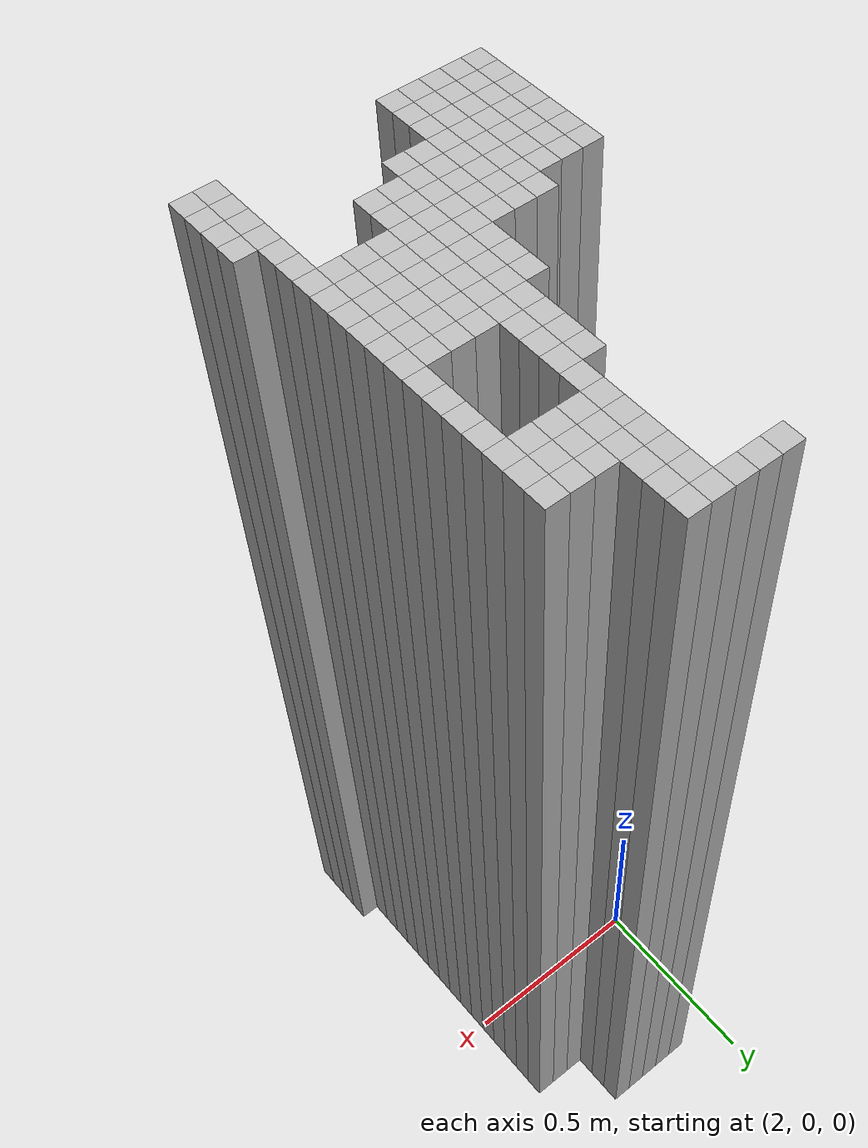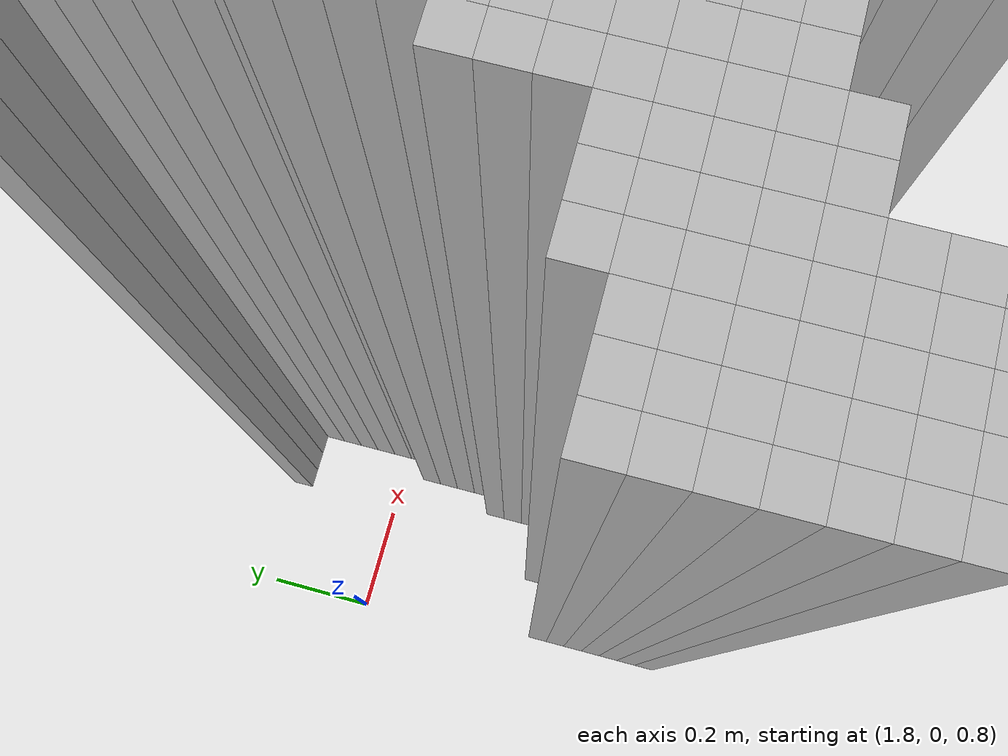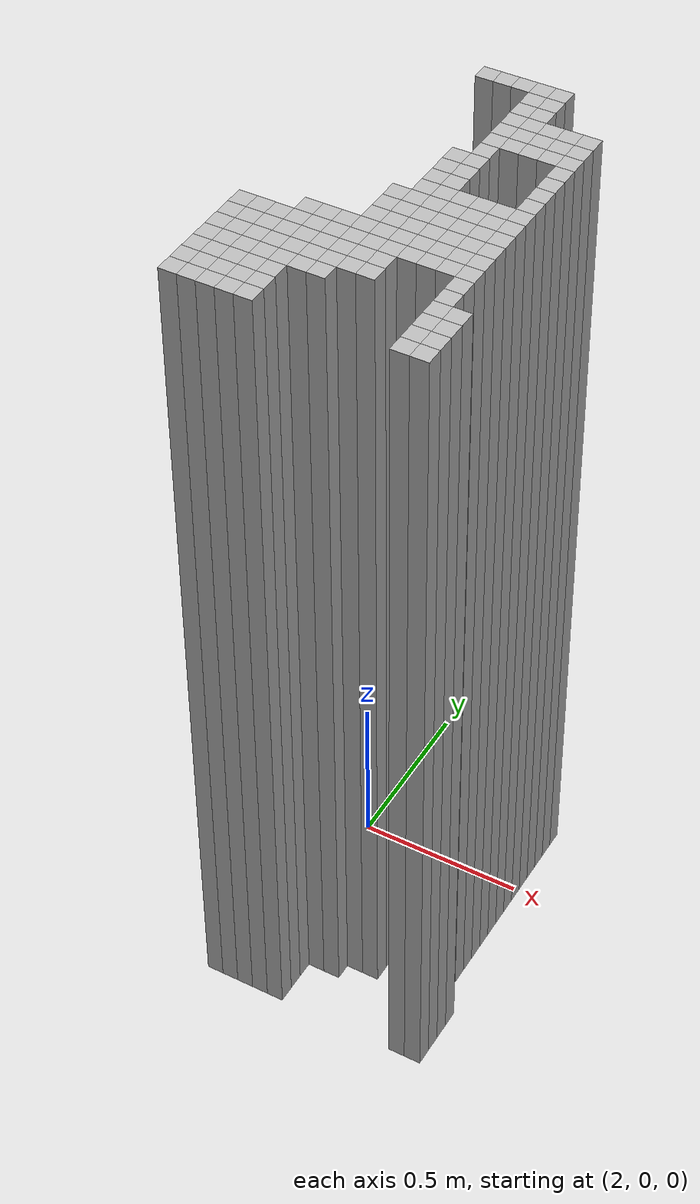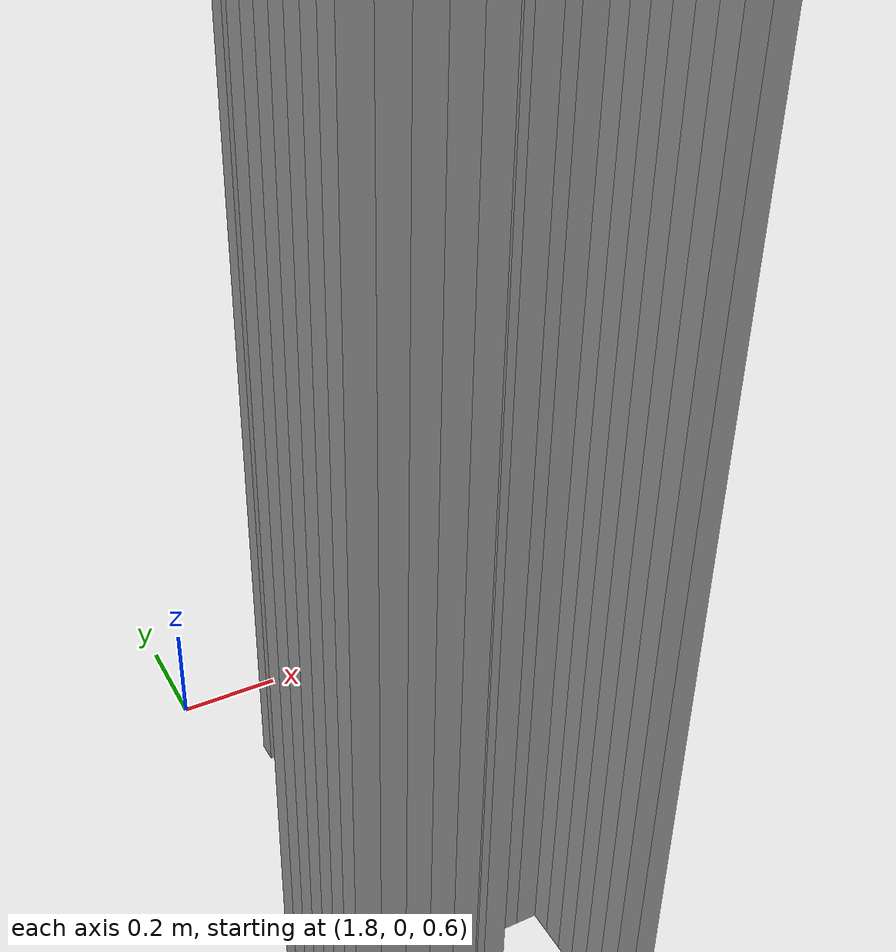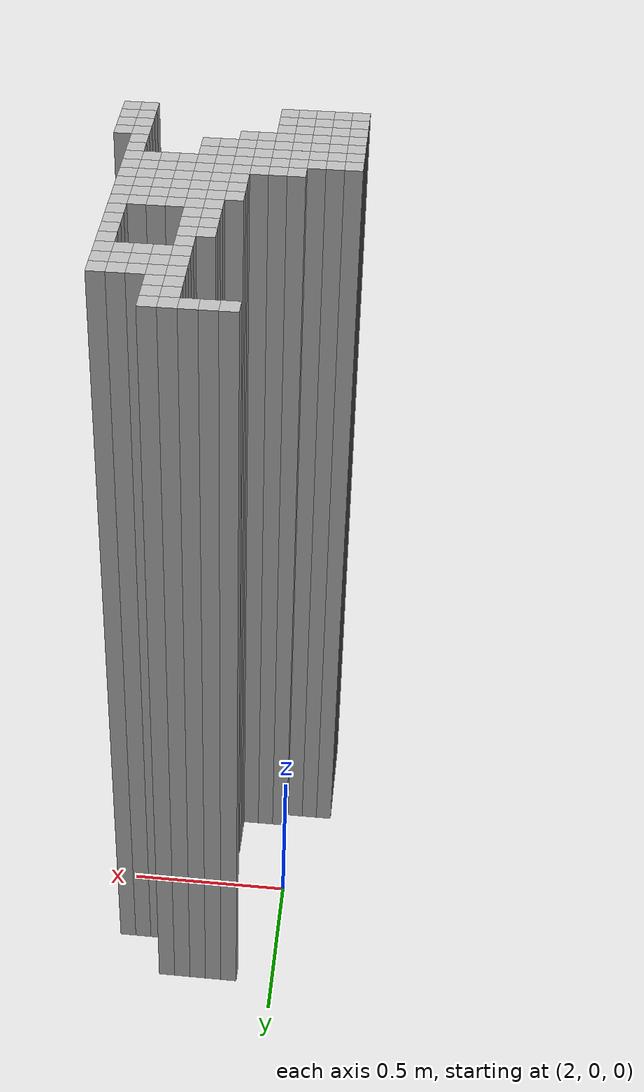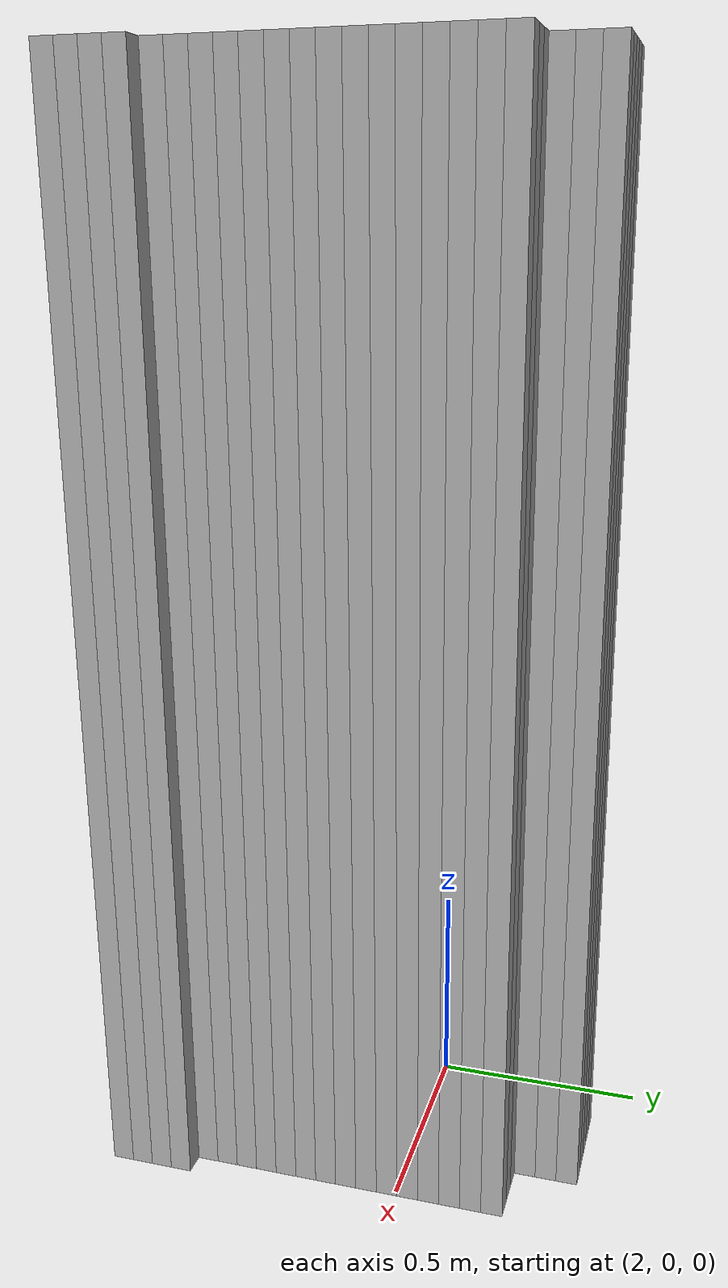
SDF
<sdf version="1.9">
 <world name="map_world">
  <model name="wall_266_146">
   <static>true</static>
   <pose>2.139 0.380 1.250 0 0 0</pose>
   <link name="link">
    <collision name="collision"><geometry><box><size>0.050 0.050 2.500</size></box></geometry></collision>
    <visual name="visual"><geometry><box><size>0.050 0.050 2.500</size></box></geometry></visual>
   </link>
  </model>
  <model name="wall_267_146">
   <static>true</static>
   <pose>2.189 0.380 1.250 0 0 0</pose>
   <link name="link">
    <collision name="collision"><geometry><box><size>0.050 0.050 2.500</size></box></geometry></collision>
    <visual name="visual"><geometry><box><size>0.050 0.050 2.500</size></box></geometry></visual>
   </link>
  </model>
  <model name="wall_268_146">
   <static>true</static>
   <pose>2.239 0.380 1.250 0 0 0</pose>
   <link name="link">
    <collision name="collision"><geometry><box><size>0.050 0.050 2.500</size></box></geometry></collision>
    <visual name="visual"><geometry><box><size>0.050 0.050 2.500</size></box></geometry></visual>
   </link>
  </model>
  <model name="wall_269_146">
   <static>true</static>
   <pose>2.289 0.380 1.250 0 0 0</pose>
   <link name="link">
    <collision name="collision"><geometry><box><size>0.050 0.050 2.500</size></box></geometry></collision>
    <visual name="visual"><geometry><box><size>0.050 0.050 2.500</size></box></geometry></visual>
   </link>
  </model>
  <model name="wall_270_146">
   <static>true</static>
   <pose>2.339 0.380 1.250 0 0 0</pose>
   <link name="link">
    <collision name="collision"><geometry><box><size>0.050 0.050 2.500</size></box></geometry></collision>
    <visual name="visual"><geometry><box><size>0.050 0.050 2.500</size></box></geometry></visual>
   </link>
  </model>
  <model name="wall_269_147">
   <static>true</static>
   <pose>2.289 0.330 1.250 0 0 0</pose>
   <link name="link">
    <collision name="collision"><geometry><box><size>0.050 0.050 2.500</size></box></geometry></collision>
    <visual name="visual"><geometry><box><size>0.050 0.050 2.500</size></box></geometry></visual>
   </link>
  </model>
  <model name="wall_270_147">
   <static>true</static>
   <pose>2.339 0.330 1.250 0 0 0</pose>
   <link name="link">
    <collision name="collision"><geometry><box><size>0.050 0.050 2.500</size></box></geometry></collision>
    <visual name="visual"><geometry><box><size>0.050 0.050 2.500</size></box></geometry></visual>
   </link>
  </model>
  <model name="wall_269_148">
   <static>true</static>
   <pose>2.289 0.280 1.250 0 0 0</pose>
   <link name="link">
    <collision name="collision"><geometry><box><size>0.050 0.050 2.500</size></box></geometry></collision>
    <visual name="visual"><geometry><box><size>0.050 0.050 2.500</size></box></geometry></visual>
   </link>
  </model>
  <model name="wall_270_148">
   <static>true</static>
   <pose>2.339 0.280 1.250 0 0 0</pose>
   <link name="link">
    <collision name="collision"><geometry><box><size>0.050 0.050 2.500</size></box></geometry></collision>
    <visual name="visual"><geometry><box><size>0.050 0.050 2.500</size></box></geometry></visual>
   </link>
  </model>
  <model name="wall_269_149">
   <static>true</static>
   <pose>2.289 0.230 1.250 0 0 0</pose>
   <link name="link">
    <collision name="collision"><geometry><box><size>0.050 0.050 2.500</size></box></geometry></collision>
    <visual name="visual"><geometry><box><size>0.050 0.050 2.500</size></box></geometry></visual>
   </link>
  </model>
  <model name="wall_270_149">
   <static>true</static>
   <pose>2.339 0.230 1.250 0 0 0</pose>
   <link name="link">
    <collision name="collision"><geometry><box><size>0.050 0.050 2.500</size></box></geometry></collision>
    <visual name="visual"><geometry><box><size>0.050 0.050 2.500</size></box></geometry></visual>
   </link>
  </model>
  <model name="wall_271_149">
   <static>true</static>
   <pose>2.389 0.230 1.250 0 0 0</pose>
   <link name="link">
    <collision name="collision"><geometry><box><size>0.050 0.050 2.500</size></box></geometry></collision>
    <visual name="visual"><geometry><box><size>0.050 0.050 2.500</size></box></geometry></visual>
   </link>
  </model>
  <model name="wall_272_149">
   <static>true</static>
   <pose>2.439 0.230 1.250 0 0 0</pose>
   <link name="link">
    <collision name="collision"><geometry><box><size>0.050 0.050 2.500</size></box></geometry></collision>
    <visual name="visual"><geometry><box><size>0.050 0.050 2.500</size></box></geometry></visual>
   </link>
  </model>
  <model name="wall_273_149">
   <static>true</static>
   <pose>2.489 0.230 1.250 0 0 0</pose>
   <link name="link">
    <collision name="collision"><geometry><box><size>0.050 0.050 2.500</size></box></geometry></collision>
    <visual name="visual"><geometry><box><size>0.050 0.050 2.500</size></box></geometry></visual>
   </link>
  </model>
  <model name="wall_269_150">
   <static>true</static>
   <pose>2.289 0.180 1.250 0 0 0</pose>
   <link name="link">
    <collision name="collision"><geometry><box><size>0.050 0.050 2.500</size></box></geometry></collision>
    <visual name="visual"><geometry><box><size>0.050 0.050 2.500</size></box></geometry></visual>
   </link>
  </model>
  <model name="wall_270_150">
   <static>true</static>
   <pose>2.339 0.180 1.250 0 0 0</pose>
   <link name="link">
    <collision name="collision"><geometry><box><size>0.050 0.050 2.500</size></box></geometry></collision>
    <visual name="visual"><geometry><box><size>0.050 0.050 2.500</size></box></geometry></visual>
   </link>
  </model>
  <model name="wall_271_150">
   <static>true</static>
   <pose>2.389 0.180 1.250 0 0 0</pose>
   <link name="link">
    <collision name="collision"><geometry><box><size>0.050 0.050 2.500</size></box></geometry></collision>
    <visual name="visual"><geometry><box><size>0.050 0.050 2.500</size></box></geometry></visual>
   </link>
  </model>
  <model name="wall_272_150">
   <static>true</static>
   <pose>2.439 0.180 1.250 0 0 0</pose>
   <link name="link">
    <collision name="collision"><geometry><box><size>0.050 0.050 2.500</size></box></geometry></collision>
    <visual name="visual"><geometry><box><size>0.050 0.050 2.500</size></box></geometry></visual>
   </link>
  </model>
  <model name="wall_273_150">
   <static>true</static>
   <pose>2.489 0.180 1.250 0 0 0</pose>
   <link name="link">
    <collision name="collision"><geometry><box><size>0.050 0.050 2.500</size></box></geometry></collision>
    <visual name="visual"><geometry><box><size>0.050 0.050 2.500</size></box></geometry></visual>
   </link>
  </model>
  <model name="wall_269_151">
   <static>true</static>
   <pose>2.289 0.130 1.250 0 0 0</pose>
   <link name="link">
    <collision name="collision"><geometry><box><size>0.050 0.050 2.500</size></box></geometry></collision>
    <visual name="visual"><geometry><box><size>0.050 0.050 2.500</size></box></geometry></visual>
   </link>
  </model>
  <model name="wall_270_151">
   <static>true</static>
   <pose>2.339 0.130 1.250 0 0 0</pose>
   <link name="link">
    <collision name="collision"><geometry><box><size>0.050 0.050 2.500</size></box></geometry></collision>
    <visual name="visual"><geometry><box><size>0.050 0.050 2.500</size></box></geometry></visual>
   </link>
  </model>
  <model name="wall_271_151">
   <static>true</static>
   <pose>2.389 0.130 1.250 0 0 0</pose>
   <link name="link">
    <collision name="collision"><geometry><box><size>0.050 0.050 2.500</size></box></geometry></collision>
    <visual name="visual"><geometry><box><size>0.050 0.050 2.500</size></box></geometry></visual>
   </link>
  </model>
  <model name="wall_272_151">
   <static>true</static>
   <pose>2.439 0.130 1.250 0 0 0</pose>
   <link name="link">
    <collision name="collision"><geometry><box><size>0.050 0.050 2.500</size></box></geometry></collision>
    <visual name="visual"><geometry><box><size>0.050 0.050 2.500</size></box></geometry></visual>
   </link>
  </model>
  <model name="wall_273_151">
   <static>true</static>
   <pose>2.489 0.130 1.250 0 0 0</pose>
   <link name="link">
    <collision name="collision"><geometry><box><size>0.050 0.050 2.500</size></box></geometry></collision>
    <visual name="visual"><geometry><box><size>0.050 0.050 2.500</size></box></geometry></visual>
   </link>
  </model>
  <model name="wall_269_152">
   <static>true</static>
   <pose>2.289 0.080 1.250 0 0 0</pose>
   <link name="link">
    <collision name="collision"><geometry><box><size>0.050 0.050 2.500</size></box></geometry></collision>
    <visual name="visual"><geometry><box><size>0.050 0.050 2.500</size></box></geometry></visual>
   </link>
  </model>
  <model name="wall_273_152">
   <static>true</static>
   <pose>2.489 0.080 1.250 0 0 0</pose>
   <link name="link">
    <collision name="collision"><geometry><box><size>0.050 0.050 2.500</size></box></geometry></collision>
    <visual name="visual"><geometry><box><size>0.050 0.050 2.500</size></box></geometry></visual>
   </link>
  </model>
  <model name="wall_268_153">
   <static>true</static>
   <pose>2.239 0.030 1.250 0 0 0</pose>
   <link name="link">
    <collision name="collision"><geometry><box><size>0.050 0.050 2.500</size></box></geometry></collision>
    <visual name="visual"><geometry><box><size>0.050 0.050 2.500</size></box></geometry></visual>
   </link>
  </model>
  <model name="wall_269_153">
   <static>true</static>
   <pose>2.289 0.030 1.250 0 0 0</pose>
   <link name="link">
    <collision name="collision"><geometry><box><size>0.050 0.050 2.500</size></box></geometry></collision>
    <visual name="visual"><geometry><box><size>0.050 0.050 2.500</size></box></geometry></visual>
   </link>
  </model>
  <model name="wall_273_153">
   <static>true</static>
   <pose>2.489 0.030 1.250 0 0 0</pose>
   <link name="link">
    <collision name="collision"><geometry><box><size>0.050 0.050 2.500</size></box></geometry></collision>
    <visual name="visual"><geometry><box><size>0.050 0.050 2.500</size></box></geometry></visual>
   </link>
  </model>
  <model name="wall_268_154">
   <static>true</static>
   <pose>2.239 -0.020 1.250 0 0 0</pose>
   <link name="link">
    <collision name="collision"><geometry><box><size>0.050 0.050 2.500</size></box></geometry></collision>
    <visual name="visual"><geometry><box><size>0.050 0.050 2.500</size></box></geometry></visual>
   </link>
  </model>
  <model name="wall_269_154">
   <static>true</static>
   <pose>2.289 -0.020 1.250 0 0 0</pose>
   <link name="link">
    <collision name="collision"><geometry><box><size>0.050 0.050 2.500</size></box></geometry></collision>
    <visual name="visual"><geometry><box><size>0.050 0.050 2.500</size></box></geometry></visual>
   </link>
  </model>
  <model name="wall_273_154">
   <static>true</static>
   <pose>2.489 -0.020 1.250 0 0 0</pose>
   <link name="link">
    <collision name="collision"><geometry><box><size>0.050 0.050 2.500</size></box></geometry></collision>
    <visual name="visual"><geometry><box><size>0.050 0.050 2.500</size></box></geometry></visual>
   </link>
  </model>
  <model name="wall_268_155">
   <static>true</static>
   <pose>2.239 -0.070 1.250 0 0 0</pose>
   <link name="link">
    <collision name="collision"><geometry><box><size>0.050 0.050 2.500</size></box></geometry></collision>
    <visual name="visual"><geometry><box><size>0.050 0.050 2.500</size></box></geometry></visual>
   </link>
  </model>
  <model name="wall_269_155">
   <static>true</static>
   <pose>2.289 -0.070 1.250 0 0 0</pose>
   <link name="link">
    <collision name="collision"><geometry><box><size>0.050 0.050 2.500</size></box></geometry></collision>
    <visual name="visual"><geometry><box><size>0.050 0.050 2.500</size></box></geometry></visual>
   </link>
  </model>
  <model name="wall_273_155">
   <static>true</static>
   <pose>2.489 -0.070 1.250 0 0 0</pose>
   <link name="link">
    <collision name="collision"><geometry><box><size>0.050 0.050 2.500</size></box></geometry></collision>
    <visual name="visual"><geometry><box><size>0.050 0.050 2.500</size></box></geometry></visual>
   </link>
  </model>
  <model name="wall_268_156">
   <static>true</static>
   <pose>2.239 -0.120 1.250 0 0 0</pose>
   <link name="link">
    <collision name="collision"><geometry><box><size>0.050 0.050 2.500</size></box></geometry></collision>
    <visual name="visual"><geometry><box><size>0.050 0.050 2.500</size></box></geometry></visual>
   </link>
  </model>
  <model name="wall_269_156">
   <static>true</static>
   <pose>2.289 -0.120 1.250 0 0 0</pose>
   <link name="link">
    <collision name="collision"><geometry><box><size>0.050 0.050 2.500</size></box></geometry></collision>
    <visual name="visual"><geometry><box><size>0.050 0.050 2.500</size></box></geometry></visual>
   </link>
  </model>
  <model name="wall_270_156">
   <static>true</static>
   <pose>2.339 -0.120 1.250 0 0 0</pose>
   <link name="link">
    <collision name="collision"><geometry><box><size>0.050 0.050 2.500</size></box></geometry></collision>
    <visual name="visual"><geometry><box><size>0.050 0.050 2.500</size></box></geometry></visual>
   </link>
  </model>
  <model name="wall_271_156">
   <static>true</static>
   <pose>2.389 -0.120 1.250 0 0 0</pose>
   <link name="link">
    <collision name="collision"><geometry><box><size>0.050 0.050 2.500</size></box></geometry></collision>
    <visual name="visual"><geometry><box><size>0.050 0.050 2.500</size></box></geometry></visual>
   </link>
  </model>
  <model name="wall_272_156">
   <static>true</static>
   <pose>2.439 -0.120 1.250 0 0 0</pose>
   <link name="link">
    <collision name="collision"><geometry><box><size>0.050 0.050 2.500</size></box></geometry></collision>
    <visual name="visual"><geometry><box><size>0.050 0.050 2.500</size></box></geometry></visual>
   </link>
  </model>
  <model name="wall_273_156">
   <static>true</static>
   <pose>2.489 -0.120 1.250 0 0 0</pose>
   <link name="link">
    <collision name="collision"><geometry><box><size>0.050 0.050 2.500</size></box></geometry></collision>
    <visual name="visual"><geometry><box><size>0.050 0.050 2.500</size></box></geometry></visual>
   </link>
  </model>
  <model name="wall_267_157">
   <static>true</static>
   <pose>2.189 -0.170 1.250 0 0 0</pose>
   <link name="link">
    <collision name="collision"><geometry><box><size>0.050 0.050 2.500</size></box></geometry></collision>
    <visual name="visual"><geometry><box><size>0.050 0.050 2.500</size></box></geometry></visual>
   </link>
  </model>
  <model name="wall_268_157">
   <static>true</static>
   <pose>2.239 -0.170 1.250 0 0 0</pose>
   <link name="link">
    <collision name="collision"><geometry><box><size>0.050 0.050 2.500</size></box></geometry></collision>
    <visual name="visual"><geometry><box><size>0.050 0.050 2.500</size></box></geometry></visual>
   </link>
  </model>
  <model name="wall_269_157">
   <static>true</static>
   <pose>2.289 -0.170 1.250 0 0 0</pose>
   <link name="link">
    <collision name="collision"><geometry><box><size>0.050 0.050 2.500</size></box></geometry></collision>
    <visual name="visual"><geometry><box><size>0.050 0.050 2.500</size></box></geometry></visual>
   </link>
  </model>
  <model name="wall_270_157">
   <static>true</static>
   <pose>2.339 -0.170 1.250 0 0 0</pose>
   <link name="link">
    <collision name="collision"><geometry><box><size>0.050 0.050 2.500</size></box></geometry></collision>
    <visual name="visual"><geometry><box><size>0.050 0.050 2.500</size></box></geometry></visual>
   </link>
  </model>
  <model name="wall_271_157">
   <static>true</static>
   <pose>2.389 -0.170 1.250 0 0 0</pose>
   <link name="link">
    <collision name="collision"><geometry><box><size>0.050 0.050 2.500</size></box></geometry></collision>
    <visual name="visual"><geometry><box><size>0.050 0.050 2.500</size></box></geometry></visual>
   </link>
  </model>
  <model name="wall_272_157">
   <static>true</static>
   <pose>2.439 -0.170 1.250 0 0 0</pose>
   <link name="link">
    <collision name="collision"><geometry><box><size>0.050 0.050 2.500</size></box></geometry></collision>
    <visual name="visual"><geometry><box><size>0.050 0.050 2.500</size></box></geometry></visual>
   </link>
  </model>
  <model name="wall_273_157">
   <static>true</static>
   <pose>2.489 -0.170 1.250 0 0 0</pose>
   <link name="link">
    <collision name="collision"><geometry><box><size>0.050 0.050 2.500</size></box></geometry></collision>
    <visual name="visual"><geometry><box><size>0.050 0.050 2.500</size></box></geometry></visual>
   </link>
  </model>
  <model name="wall_267_158">
   <static>true</static>
   <pose>2.189 -0.220 1.250 0 0 0</pose>
   <link name="link">
    <collision name="collision"><geometry><box><size>0.050 0.050 2.500</size></box></geometry></collision>
    <visual name="visual"><geometry><box><size>0.050 0.050 2.500</size></box></geometry></visual>
   </link>
  </model>
  <model name="wall_268_158">
   <static>true</static>
   <pose>2.239 -0.220 1.250 0 0 0</pose>
   <link name="link">
    <collision name="collision"><geometry><box><size>0.050 0.050 2.500</size></box></geometry></collision>
    <visual name="visual"><geometry><box><size>0.050 0.050 2.500</size></box></geometry></visual>
   </link>
  </model>
  <model name="wall_269_158">
   <static>true</static>
   <pose>2.289 -0.220 1.250 0 0 0</pose>
   <link name="link">
    <collision name="collision"><geometry><box><size>0.050 0.050 2.500</size></box></geometry></collision>
    <visual name="visual"><geometry><box><size>0.050 0.050 2.500</size></box></geometry></visual>
   </link>
  </model>
  <model name="wall_270_158">
   <static>true</static>
   <pose>2.339 -0.220 1.250 0 0 0</pose>
   <link name="link">
    <collision name="collision"><geometry><box><size>0.050 0.050 2.500</size></box></geometry></collision>
    <visual name="visual"><geometry><box><size>0.050 0.050 2.500</size></box></geometry></visual>
   </link>
  </model>
  <model name="wall_271_158">
   <static>true</static>
   <pose>2.389 -0.220 1.250 0 0 0</pose>
   <link name="link">
    <collision name="collision"><geometry><box><size>0.050 0.050 2.500</size></box></geometry></collision>
    <visual name="visual"><geometry><box><size>0.050 0.050 2.500</size></box></geometry></visual>
   </link>
  </model>
  <model name="wall_272_158">
   <static>true</static>
   <pose>2.439 -0.220 1.250 0 0 0</pose>
   <link name="link">
    <collision name="collision"><geometry><box><size>0.050 0.050 2.500</size></box></geometry></collision>
    <visual name="visual"><geometry><box><size>0.050 0.050 2.500</size></box></geometry></visual>
   </link>
  </model>
  <model name="wall_273_158">
   <static>true</static>
   <pose>2.489 -0.220 1.250 0 0 0</pose>
   <link name="link">
    <collision name="collision"><geometry><box><size>0.050 0.050 2.500</size></box></geometry></collision>
    <visual name="visual"><geometry><box><size>0.050 0.050 2.500</size></box></geometry></visual>
   </link>
  </model>
  <model name="wall_267_159">
   <static>true</static>
   <pose>2.189 -0.270 1.250 0 0 0</pose>
   <link name="link">
    <collision name="collision"><geometry><box><size>0.050 0.050 2.500</size></box></geometry></collision>
    <visual name="visual"><geometry><box><size>0.050 0.050 2.500</size></box></geometry></visual>
   </link>
  </model>
  <model name="wall_268_159">
   <static>true</static>
   <pose>2.239 -0.270 1.250 0 0 0</pose>
   <link name="link">
    <collision name="collision"><geometry><box><size>0.050 0.050 2.500</size></box></geometry></collision>
    <visual name="visual"><geometry><box><size>0.050 0.050 2.500</size></box></geometry></visual>
   </link>
  </model>
  <model name="wall_269_159">
   <static>true</static>
   <pose>2.289 -0.270 1.250 0 0 0</pose>
   <link name="link">
    <collision name="collision"><geometry><box><size>0.050 0.050 2.500</size></box></geometry></collision>
    <visual name="visual"><geometry><box><size>0.050 0.050 2.500</size></box></geometry></visual>
   </link>
  </model>
  <model name="wall_270_159">
   <static>true</static>
   <pose>2.339 -0.270 1.250 0 0 0</pose>
   <link name="link">
    <collision name="collision"><geometry><box><size>0.050 0.050 2.500</size></box></geometry></collision>
    <visual name="visual"><geometry><box><size>0.050 0.050 2.500</size></box></geometry></visual>
   </link>
  </model>
  <model name="wall_271_159">
   <static>true</static>
   <pose>2.389 -0.270 1.250 0 0 0</pose>
   <link name="link">
    <collision name="collision"><geometry><box><size>0.050 0.050 2.500</size></box></geometry></collision>
    <visual name="visual"><geometry><box><size>0.050 0.050 2.500</size></box></geometry></visual>
   </link>
  </model>
  <model name="wall_272_159">
   <static>true</static>
   <pose>2.439 -0.270 1.250 0 0 0</pose>
   <link name="link">
    <collision name="collision"><geometry><box><size>0.050 0.050 2.500</size></box></geometry></collision>
    <visual name="visual"><geometry><box><size>0.050 0.050 2.500</size></box></geometry></visual>
   </link>
  </model>
  <model name="wall_273_159">
   <static>true</static>
   <pose>2.489 -0.270 1.250 0 0 0</pose>
   <link name="link">
    <collision name="collision"><geometry><box><size>0.050 0.050 2.500</size></box></geometry></collision>
    <visual name="visual"><geometry><box><size>0.050 0.050 2.500</size></box></geometry></visual>
   </link>
  </model>
  <model name="wall_264_160">
   <static>true</static>
   <pose>2.039 -0.320 1.250 0 0 0</pose>
   <link name="link">
    <collision name="collision"><geometry><box><size>0.050 0.050 2.500</size></box></geometry></collision>
    <visual name="visual"><geometry><box><size>0.050 0.050 2.500</size></box></geometry></visual>
   </link>
  </model>
  <model name="wall_265_160">
   <static>true</static>
   <pose>2.089 -0.320 1.250 0 0 0</pose>
   <link name="link">
    <collision name="collision"><geometry><box><size>0.050 0.050 2.500</size></box></geometry></collision>
    <visual name="visual"><geometry><box><size>0.050 0.050 2.500</size></box></geometry></visual>
   </link>
  </model>
  <model name="wall_266_160">
   <static>true</static>
   <pose>2.139 -0.320 1.250 0 0 0</pose>
   <link name="link">
    <collision name="collision"><geometry><box><size>0.050 0.050 2.500</size></box></geometry></collision>
    <visual name="visual"><geometry><box><size>0.050 0.050 2.500</size></box></geometry></visual>
   </link>
  </model>
  <model name="wall_267_160">
   <static>true</static>
   <pose>2.189 -0.320 1.250 0 0 0</pose>
   <link name="link">
    <collision name="collision"><geometry><box><size>0.050 0.050 2.500</size></box></geometry></collision>
    <visual name="visual"><geometry><box><size>0.050 0.050 2.500</size></box></geometry></visual>
   </link>
  </model>
  <model name="wall_268_160">
   <static>true</static>
   <pose>2.239 -0.320 1.250 0 0 0</pose>
   <link name="link">
    <collision name="collision"><geometry><box><size>0.050 0.050 2.500</size></box></geometry></collision>
    <visual name="visual"><geometry><box><size>0.050 0.050 2.500</size></box></geometry></visual>
   </link>
  </model>
  <model name="wall_269_160">
   <static>true</static>
   <pose>2.289 -0.320 1.250 0 0 0</pose>
   <link name="link">
    <collision name="collision"><geometry><box><size>0.050 0.050 2.500</size></box></geometry></collision>
    <visual name="visual"><geometry><box><size>0.050 0.050 2.500</size></box></geometry></visual>
   </link>
  </model>
  <model name="wall_270_160">
   <static>true</static>
   <pose>2.339 -0.320 1.250 0 0 0</pose>
   <link name="link">
    <collision name="collision"><geometry><box><size>0.050 0.050 2.500</size></box></geometry></collision>
    <visual name="visual"><geometry><box><size>0.050 0.050 2.500</size></box></geometry></visual>
   </link>
  </model>
  <model name="wall_271_160">
   <static>true</static>
   <pose>2.389 -0.320 1.250 0 0 0</pose>
   <link name="link">
    <collision name="collision"><geometry><box><size>0.050 0.050 2.500</size></box></geometry></collision>
    <visual name="visual"><geometry><box><size>0.050 0.050 2.500</size></box></geometry></visual>
   </link>
  </model>
  <model name="wall_272_160">
   <static>true</static>
   <pose>2.439 -0.320 1.250 0 0 0</pose>
   <link name="link">
    <collision name="collision"><geometry><box><size>0.050 0.050 2.500</size></box></geometry></collision>
    <visual name="visual"><geometry><box><size>0.050 0.050 2.500</size></box></geometry></visual>
   </link>
  </model>
  <model name="wall_273_160">
   <static>true</static>
   <pose>2.489 -0.320 1.250 0 0 0</pose>
   <link name="link">
    <collision name="collision"><geometry><box><size>0.050 0.050 2.500</size></box></geometry></collision>
    <visual name="visual"><geometry><box><size>0.050 0.050 2.500</size></box></geometry></visual>
   </link>
  </model>
  <model name="wall_261_161">
   <static>true</static>
   <pose>1.889 -0.370 1.250 0 0 0</pose>
   <link name="link">
    <collision name="collision"><geometry><box><size>0.050 0.050 2.500</size></box></geometry></collision>
    <visual name="visual"><geometry><box><size>0.050 0.050 2.500</size></box></geometry></visual>
   </link>
  </model>
  <model name="wall_262_161">
   <static>true</static>
   <pose>1.939 -0.370 1.250 0 0 0</pose>
   <link name="link">
    <collision name="collision"><geometry><box><size>0.050 0.050 2.500</size></box></geometry></collision>
    <visual name="visual"><geometry><box><size>0.050 0.050 2.500</size></box></geometry></visual>
   </link>
  </model>
  <model name="wall_263_161">
   <static>true</static>
   <pose>1.989 -0.370 1.250 0 0 0</pose>
   <link name="link">
    <collision name="collision"><geometry><box><size>0.050 0.050 2.500</size></box></geometry></collision>
    <visual name="visual"><geometry><box><size>0.050 0.050 2.500</size></box></geometry></visual>
   </link>
  </model>
  <model name="wall_264_161">
   <static>true</static>
   <pose>2.039 -0.370 1.250 0 0 0</pose>
   <link name="link">
    <collision name="collision"><geometry><box><size>0.050 0.050 2.500</size></box></geometry></collision>
    <visual name="visual"><geometry><box><size>0.050 0.050 2.500</size></box></geometry></visual>
   </link>
  </model>
  <model name="wall_265_161">
   <static>true</static>
   <pose>2.089 -0.370 1.250 0 0 0</pose>
   <link name="link">
    <collision name="collision"><geometry><box><size>0.050 0.050 2.500</size></box></geometry></collision>
    <visual name="visual"><geometry><box><size>0.050 0.050 2.500</size></box></geometry></visual>
   </link>
  </model>
  <model name="wall_266_161">
   <static>true</static>
   <pose>2.139 -0.370 1.250 0 0 0</pose>
   <link name="link">
    <collision name="collision"><geometry><box><size>0.050 0.050 2.500</size></box></geometry></collision>
    <visual name="visual"><geometry><box><size>0.050 0.050 2.500</size></box></geometry></visual>
   </link>
  </model>
  <model name="wall_267_161">
   <static>true</static>
   <pose>2.189 -0.370 1.250 0 0 0</pose>
   <link name="link">
    <collision name="collision"><geometry><box><size>0.050 0.050 2.500</size></box></geometry></collision>
    <visual name="visual"><geometry><box><size>0.050 0.050 2.500</size></box></geometry></visual>
   </link>
  </model>
  <model name="wall_268_161">
   <static>true</static>
   <pose>2.239 -0.370 1.250 0 0 0</pose>
   <link name="link">
    <collision name="collision"><geometry><box><size>0.050 0.050 2.500</size></box></geometry></collision>
    <visual name="visual"><geometry><box><size>0.050 0.050 2.500</size></box></geometry></visual>
   </link>
  </model>
  <model name="wall_269_161">
   <static>true</static>
   <pose>2.289 -0.370 1.250 0 0 0</pose>
   <link name="link">
    <collision name="collision"><geometry><box><size>0.050 0.050 2.500</size></box></geometry></collision>
    <visual name="visual"><geometry><box><size>0.050 0.050 2.500</size></box></geometry></visual>
   </link>
  </model>
  <model name="wall_270_161">
   <static>true</static>
   <pose>2.339 -0.370 1.250 0 0 0</pose>
   <link name="link">
    <collision name="collision"><geometry><box><size>0.050 0.050 2.500</size></box></geometry></collision>
    <visual name="visual"><geometry><box><size>0.050 0.050 2.500</size></box></geometry></visual>
   </link>
  </model>
  <model name="wall_271_161">
   <static>true</static>
   <pose>2.389 -0.370 1.250 0 0 0</pose>
   <link name="link">
    <collision name="collision"><geometry><box><size>0.050 0.050 2.500</size></box></geometry></collision>
    <visual name="visual"><geometry><box><size>0.050 0.050 2.500</size></box></geometry></visual>
   </link>
  </model>
  <model name="wall_272_161">
   <static>true</static>
   <pose>2.439 -0.370 1.250 0 0 0</pose>
   <link name="link">
    <collision name="collision"><geometry><box><size>0.050 0.050 2.500</size></box></geometry></collision>
    <visual name="visual"><geometry><box><size>0.050 0.050 2.500</size></box></geometry></visual>
   </link>
  </model>
  <model name="wall_273_161">
   <static>true</static>
   <pose>2.489 -0.370 1.250 0 0 0</pose>
   <link name="link">
    <collision name="collision"><geometry><box><size>0.050 0.050 2.500</size></box></geometry></collision>
    <visual name="visual"><geometry><box><size>0.050 0.050 2.500</size></box></geometry></visual>
   </link>
  </model>
  <model name="wall_261_162">
   <static>true</static>
   <pose>1.889 -0.420 1.250 0 0 0</pose>
   <link name="link">
    <collision name="collision"><geometry><box><size>0.050 0.050 2.500</size></box></geometry></collision>
    <visual name="visual"><geometry><box><size>0.050 0.050 2.500</size></box></geometry></visual>
   </link>
  </model>
  <model name="wall_262_162">
   <static>true</static>
   <pose>1.939 -0.420 1.250 0 0 0</pose>
   <link name="link">
    <collision name="collision"><geometry><box><size>0.050 0.050 2.500</size></box></geometry></collision>
    <visual name="visual"><geometry><box><size>0.050 0.050 2.500</size></box></geometry></visual>
   </link>
  </model>
  <model name="wall_263_162">
   <static>true</static>
   <pose>1.989 -0.420 1.250 0 0 0</pose>
   <link name="link">
    <collision name="collision"><geometry><box><size>0.050 0.050 2.500</size></box></geometry></collision>
    <visual name="visual"><geometry><box><size>0.050 0.050 2.500</size></box></geometry></visual>
   </link>
  </model>
  <model name="wall_264_162">
   <static>true</static>
   <pose>2.039 -0.420 1.250 0 0 0</pose>
   <link name="link">
    <collision name="collision"><geometry><box><size>0.050 0.050 2.500</size></box></geometry></collision>
    <visual name="visual"><geometry><box><size>0.050 0.050 2.500</size></box></geometry></visual>
   </link>
  </model>
  <model name="wall_265_162">
   <static>true</static>
   <pose>2.089 -0.420 1.250 0 0 0</pose>
   <link name="link">
    <collision name="collision"><geometry><box><size>0.050 0.050 2.500</size></box></geometry></collision>
    <visual name="visual"><geometry><box><size>0.050 0.050 2.500</size></box></geometry></visual>
   </link>
  </model>
  <model name="wall_266_162">
   <static>true</static>
   <pose>2.139 -0.420 1.250 0 0 0</pose>
   <link name="link">
    <collision name="collision"><geometry><box><size>0.050 0.050 2.500</size></box></geometry></collision>
    <visual name="visual"><geometry><box><size>0.050 0.050 2.500</size></box></geometry></visual>
   </link>
  </model>
  <model name="wall_267_162">
   <static>true</static>
   <pose>2.189 -0.420 1.250 0 0 0</pose>
   <link name="link">
    <collision name="collision"><geometry><box><size>0.050 0.050 2.500</size></box></geometry></collision>
    <visual name="visual"><geometry><box><size>0.050 0.050 2.500</size></box></geometry></visual>
   </link>
  </model>
  <model name="wall_268_162">
   <static>true</static>
   <pose>2.239 -0.420 1.250 0 0 0</pose>
   <link name="link">
    <collision name="collision"><geometry><box><size>0.050 0.050 2.500</size></box></geometry></collision>
    <visual name="visual"><geometry><box><size>0.050 0.050 2.500</size></box></geometry></visual>
   </link>
  </model>
  <model name="wall_269_162">
   <static>true</static>
   <pose>2.289 -0.420 1.250 0 0 0</pose>
   <link name="link">
    <collision name="collision"><geometry><box><size>0.050 0.050 2.500</size></box></geometry></collision>
    <visual name="visual"><geometry><box><size>0.050 0.050 2.500</size></box></geometry></visual>
   </link>
  </model>
  <model name="wall_273_162">
   <static>true</static>
   <pose>2.489 -0.420 1.250 0 0 0</pose>
   <link name="link">
    <collision name="collision"><geometry><box><size>0.050 0.050 2.500</size></box></geometry></collision>
    <visual name="visual"><geometry><box><size>0.050 0.050 2.500</size></box></geometry></visual>
   </link>
  </model>
  <model name="wall_261_163">
   <static>true</static>
   <pose>1.889 -0.470 1.250 0 0 0</pose>
   <link name="link">
    <collision name="collision"><geometry><box><size>0.050 0.050 2.500</size></box></geometry></collision>
    <visual name="visual"><geometry><box><size>0.050 0.050 2.500</size></box></geometry></visual>
   </link>
  </model>
  <model name="wall_262_163">
   <static>true</static>
   <pose>1.939 -0.470 1.250 0 0 0</pose>
   <link name="link">
    <collision name="collision"><geometry><box><size>0.050 0.050 2.500</size></box></geometry></collision>
    <visual name="visual"><geometry><box><size>0.050 0.050 2.500</size></box></geometry></visual>
   </link>
  </model>
  <model name="wall_263_163">
   <static>true</static>
   <pose>1.989 -0.470 1.250 0 0 0</pose>
   <link name="link">
    <collision name="collision"><geometry><box><size>0.050 0.050 2.500</size></box></geometry></collision>
    <visual name="visual"><geometry><box><size>0.050 0.050 2.500</size></box></geometry></visual>
   </link>
  </model>
  <model name="wall_264_163">
   <static>true</static>
   <pose>2.039 -0.470 1.250 0 0 0</pose>
   <link name="link">
    <collision name="collision"><geometry><box><size>0.050 0.050 2.500</size></box></geometry></collision>
    <visual name="visual"><geometry><box><size>0.050 0.050 2.500</size></box></geometry></visual>
   </link>
  </model>
  <model name="wall_265_163">
   <static>true</static>
   <pose>2.089 -0.470 1.250 0 0 0</pose>
   <link name="link">
    <collision name="collision"><geometry><box><size>0.050 0.050 2.500</size></box></geometry></collision>
    <visual name="visual"><geometry><box><size>0.050 0.050 2.500</size></box></geometry></visual>
   </link>
  </model>
  <model name="wall_266_163">
   <static>true</static>
   <pose>2.139 -0.470 1.250 0 0 0</pose>
   <link name="link">
    <collision name="collision"><geometry><box><size>0.050 0.050 2.500</size></box></geometry></collision>
    <visual name="visual"><geometry><box><size>0.050 0.050 2.500</size></box></geometry></visual>
   </link>
  </model>
  <model name="wall_267_163">
   <static>true</static>
   <pose>2.189 -0.470 1.250 0 0 0</pose>
   <link name="link">
    <collision name="collision"><geometry><box><size>0.050 0.050 2.500</size></box></geometry></collision>
    <visual name="visual"><geometry><box><size>0.050 0.050 2.500</size></box></geometry></visual>
   </link>
  </model>
  <model name="wall_268_163">
   <static>true</static>
   <pose>2.239 -0.470 1.250 0 0 0</pose>
   <link name="link">
    <collision name="collision"><geometry><box><size>0.050 0.050 2.500</size></box></geometry></collision>
    <visual name="visual"><geometry><box><size>0.050 0.050 2.500</size></box></geometry></visual>
   </link>
  </model>
  <model name="wall_269_163">
   <static>true</static>
   <pose>2.289 -0.470 1.250 0 0 0</pose>
   <link name="link">
    <collision name="collision"><geometry><box><size>0.050 0.050 2.500</size></box></geometry></collision>
    <visual name="visual"><geometry><box><size>0.050 0.050 2.500</size></box></geometry></visual>
   </link>
  </model>
  <model name="wall_273_163">
   <static>true</static>
   <pose>2.489 -0.470 1.250 0 0 0</pose>
   <link name="link">
    <collision name="collision"><geometry><box><size>0.050 0.050 2.500</size></box></geometry></collision>
    <visual name="visual"><geometry><box><size>0.050 0.050 2.500</size></box></geometry></visual>
   </link>
  </model>
  <model name="wall_261_164">
   <static>true</static>
   <pose>1.889 -0.520 1.250 0 0 0</pose>
   <link name="link">
    <collision name="collision"><geometry><box><size>0.050 0.050 2.500</size></box></geometry></collision>
    <visual name="visual"><geometry><box><size>0.050 0.050 2.500</size></box></geometry></visual>
   </link>
  </model>
  <model name="wall_262_164">
   <static>true</static>
   <pose>1.939 -0.520 1.250 0 0 0</pose>
   <link name="link">
    <collision name="collision"><geometry><box><size>0.050 0.050 2.500</size></box></geometry></collision>
    <visual name="visual"><geometry><box><size>0.050 0.050 2.500</size></box></geometry></visual>
   </link>
  </model>
  <model name="wall_263_164">
   <static>true</static>
   <pose>1.989 -0.520 1.250 0 0 0</pose>
   <link name="link">
    <collision name="collision"><geometry><box><size>0.050 0.050 2.500</size></box></geometry></collision>
    <visual name="visual"><geometry><box><size>0.050 0.050 2.500</size></box></geometry></visual>
   </link>
  </model>
  <model name="wall_264_164">
   <static>true</static>
   <pose>2.039 -0.520 1.250 0 0 0</pose>
   <link name="link">
    <collision name="collision"><geometry><box><size>0.050 0.050 2.500</size></box></geometry></collision>
    <visual name="visual"><geometry><box><size>0.050 0.050 2.500</size></box></geometry></visual>
   </link>
  </model>
  <model name="wall_265_164">
   <static>true</static>
   <pose>2.089 -0.520 1.250 0 0 0</pose>
   <link name="link">
    <collision name="collision"><geometry><box><size>0.050 0.050 2.500</size></box></geometry></collision>
    <visual name="visual"><geometry><box><size>0.050 0.050 2.500</size></box></geometry></visual>
   </link>
  </model>
  <model name="wall_266_164">
   <static>true</static>
   <pose>2.139 -0.520 1.250 0 0 0</pose>
   <link name="link">
    <collision name="collision"><geometry><box><size>0.050 0.050 2.500</size></box></geometry></collision>
    <visual name="visual"><geometry><box><size>0.050 0.050 2.500</size></box></geometry></visual>
   </link>
  </model>
  <model name="wall_267_164">
   <static>true</static>
   <pose>2.189 -0.520 1.250 0 0 0</pose>
   <link name="link">
    <collision name="collision"><geometry><box><size>0.050 0.050 2.500</size></box></geometry></collision>
    <visual name="visual"><geometry><box><size>0.050 0.050 2.500</size></box></geometry></visual>
   </link>
  </model>
  <model name="wall_273_164">
   <static>true</static>
   <pose>2.489 -0.520 1.250 0 0 0</pose>
   <link name="link">
    <collision name="collision"><geometry><box><size>0.050 0.050 2.500</size></box></geometry></collision>
    <visual name="visual"><geometry><box><size>0.050 0.050 2.500</size></box></geometry></visual>
   </link>
  </model>
  <model name="wall_274_164">
   <static>true</static>
   <pose>2.539 -0.520 1.250 0 0 0</pose>
   <link name="link">
    <collision name="collision"><geometry><box><size>0.050 0.050 2.500</size></box></geometry></collision>
    <visual name="visual"><geometry><box><size>0.050 0.050 2.500</size></box></geometry></visual>
   </link>
  </model>
  <model name="wall_261_165">
   <static>true</static>
   <pose>1.889 -0.570 1.250 0 0 0</pose>
   <link name="link">
    <collision name="collision"><geometry><box><size>0.050 0.050 2.500</size></box></geometry></collision>
    <visual name="visual"><geometry><box><size>0.050 0.050 2.500</size></box></geometry></visual>
   </link>
  </model>
  <model name="wall_262_165">
   <static>true</static>
   <pose>1.939 -0.570 1.250 0 0 0</pose>
   <link name="link">
    <collision name="collision"><geometry><box><size>0.050 0.050 2.500</size></box></geometry></collision>
    <visual name="visual"><geometry><box><size>0.050 0.050 2.500</size></box></geometry></visual>
   </link>
  </model>
  <model name="wall_263_165">
   <static>true</static>
   <pose>1.989 -0.570 1.250 0 0 0</pose>
   <link name="link">
    <collision name="collision"><geometry><box><size>0.050 0.050 2.500</size></box></geometry></collision>
    <visual name="visual"><geometry><box><size>0.050 0.050 2.500</size></box></geometry></visual>
   </link>
  </model>
  <model name="wall_264_165">
   <static>true</static>
   <pose>2.039 -0.570 1.250 0 0 0</pose>
   <link name="link">
    <collision name="collision"><geometry><box><size>0.050 0.050 2.500</size></box></geometry></collision>
    <visual name="visual"><geometry><box><size>0.050 0.050 2.500</size></box></geometry></visual>
   </link>
  </model>
  <model name="wall_265_165">
   <static>true</static>
   <pose>2.089 -0.570 1.250 0 0 0</pose>
   <link name="link">
    <collision name="collision"><geometry><box><size>0.050 0.050 2.500</size></box></geometry></collision>
    <visual name="visual"><geometry><box><size>0.050 0.050 2.500</size></box></geometry></visual>
   </link>
  </model>
  <model name="wall_273_165">
   <static>true</static>
   <pose>2.489 -0.570 1.250 0 0 0</pose>
   <link name="link">
    <collision name="collision"><geometry><box><size>0.050 0.050 2.500</size></box></geometry></collision>
    <visual name="visual"><geometry><box><size>0.050 0.050 2.500</size></box></geometry></visual>
   </link>
  </model>
  <model name="wall_274_165">
   <static>true</static>
   <pose>2.539 -0.570 1.250 0 0 0</pose>
   <link name="link">
    <collision name="collision"><geometry><box><size>0.050 0.050 2.500</size></box></geometry></collision>
    <visual name="visual"><geometry><box><size>0.050 0.050 2.500</size></box></geometry></visual>
   </link>
  </model>
  <model name="wall_261_166">
   <static>true</static>
   <pose>1.889 -0.620 1.250 0 0 0</pose>
   <link name="link">
    <collision name="collision"><geometry><box><size>0.050 0.050 2.500</size></box></geometry></collision>
    <visual name="visual"><geometry><box><size>0.050 0.050 2.500</size></box></geometry></visual>
   </link>
  </model>
  <model name="wall_262_166">
   <static>true</static>
   <pose>1.939 -0.620 1.250 0 0 0</pose>
   <link name="link">
    <collision name="collision"><geometry><box><size>0.050 0.050 2.500</size></box></geometry></collision>
    <visual name="visual"><geometry><box><size>0.050 0.050 2.500</size></box></geometry></visual>
   </link>
  </model>
  <model name="wall_263_166">
   <static>true</static>
   <pose>1.989 -0.620 1.250 0 0 0</pose>
   <link name="link">
    <collision name="collision"><geometry><box><size>0.050 0.050 2.500</size></box></geometry></collision>
    <visual name="visual"><geometry><box><size>0.050 0.050 2.500</size></box></geometry></visual>
   </link>
  </model>
  <model name="wall_264_166">
   <static>true</static>
   <pose>2.039 -0.620 1.250 0 0 0</pose>
   <link name="link">
    <collision name="collision"><geometry><box><size>0.050 0.050 2.500</size></box></geometry></collision>
    <visual name="visual"><geometry><box><size>0.050 0.050 2.500</size></box></geometry></visual>
   </link>
  </model>
  <model name="wall_265_166">
   <static>true</static>
   <pose>2.089 -0.620 1.250 0 0 0</pose>
   <link name="link">
    <collision name="collision"><geometry><box><size>0.050 0.050 2.500</size></box></geometry></collision>
    <visual name="visual"><geometry><box><size>0.050 0.050 2.500</size></box></geometry></visual>
   </link>
  </model>
  <model name="wall_273_166">
   <static>true</static>
   <pose>2.489 -0.620 1.250 0 0 0</pose>
   <link name="link">
    <collision name="collision"><geometry><box><size>0.050 0.050 2.500</size></box></geometry></collision>
    <visual name="visual"><geometry><box><size>0.050 0.050 2.500</size></box></geometry></visual>
   </link>
  </model>
  <model name="wall_274_166">
   <static>true</static>
   <pose>2.539 -0.620 1.250 0 0 0</pose>
   <link name="link">
    <collision name="collision"><geometry><box><size>0.050 0.050 2.500</size></box></geometry></collision>
    <visual name="visual"><geometry><box><size>0.050 0.050 2.500</size></box></geometry></visual>
   </link>
  </model>
  <model name="wall_261_167">
   <static>true</static>
   <pose>1.889 -0.670 1.250 0 0 0</pose>
   <link name="link">
    <collision name="collision"><geometry><box><size>0.050 0.050 2.500</size></box></geometry></collision>
    <visual name="visual"><geometry><box><size>0.050 0.050 2.500</size></box></geometry></visual>
   </link>
  </model>
  <model name="wall_262_167">
   <static>true</static>
   <pose>1.939 -0.670 1.250 0 0 0</pose>
   <link name="link">
    <collision name="collision"><geometry><box><size>0.050 0.050 2.500</size></box></geometry></collision>
    <visual name="visual"><geometry><box><size>0.050 0.050 2.500</size></box></geometry></visual>
   </link>
  </model>
  <model name="wall_263_167">
   <static>true</static>
   <pose>1.989 -0.670 1.250 0 0 0</pose>
   <link name="link">
    <collision name="collision"><geometry><box><size>0.050 0.050 2.500</size></box></geometry></collision>
    <visual name="visual"><geometry><box><size>0.050 0.050 2.500</size></box></geometry></visual>
   </link>
  </model>
  <model name="wall_264_167">
   <static>true</static>
   <pose>2.039 -0.670 1.250 0 0 0</pose>
   <link name="link">
    <collision name="collision"><geometry><box><size>0.050 0.050 2.500</size></box></geometry></collision>
    <visual name="visual"><geometry><box><size>0.050 0.050 2.500</size></box></geometry></visual>
   </link>
  </model>
  <model name="wall_265_167">
   <static>true</static>
   <pose>2.089 -0.670 1.250 0 0 0</pose>
   <link name="link">
    <collision name="collision"><geometry><box><size>0.050 0.050 2.500</size></box></geometry></collision>
    <visual name="visual"><geometry><box><size>0.050 0.050 2.500</size></box></geometry></visual>
   </link>
  </model>
  <model name="wall_273_167">
   <static>true</static>
   <pose>2.489 -0.670 1.250 0 0 0</pose>
   <link name="link">
    <collision name="collision"><geometry><box><size>0.050 0.050 2.500</size></box></geometry></collision>
    <visual name="visual"><geometry><box><size>0.050 0.050 2.500</size></box></geometry></visual>
   </link>
  </model>
  <model name="wall_274_167">
   <static>true</static>
   <pose>2.539 -0.670 1.250 0 0 0</pose>
   <link name="link">
    <collision name="collision"><geometry><box><size>0.050 0.050 2.500</size></box></geometry></collision>
    <visual name="visual"><geometry><box><size>0.050 0.050 2.500</size></box></geometry></visual>
   </link>
  </model>
 </world>
</sdf>
